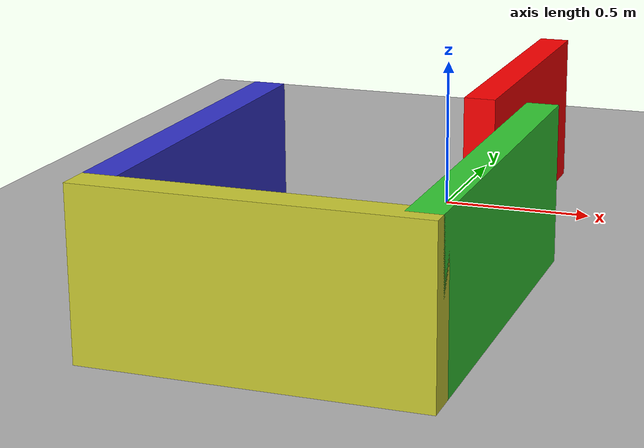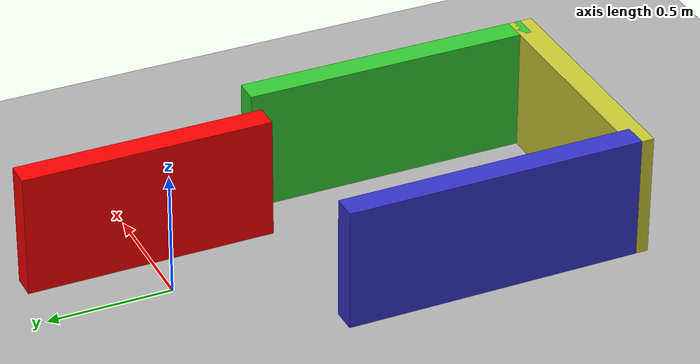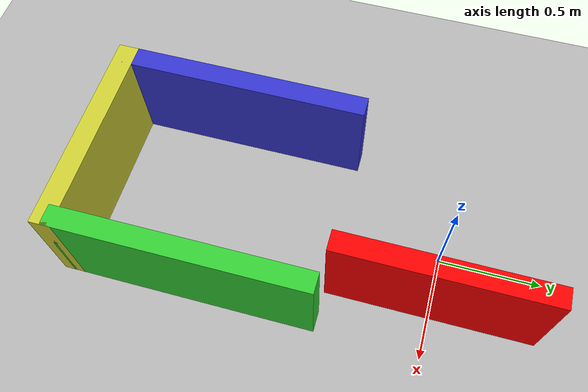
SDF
<?xml version="1.0" ?>
<sdf version="1.8">
  <world name="ParkingLot">
    <!-- Sensors rendszer plugin IGNITION GAZEBO-hoz -->
    <plugin filename="ignition-gazebo-physics-system" name="ignition::gazebo::systems::Physics"/>
    <plugin filename="ignition-gazebo-sensors-system" name="ignition::gazebo::systems::Sensors">
    </plugin>
    <scene>
      <ambient>0.8 0.8 0.8 1</ambient>
      <background>0.8 0.8 0.8 1</background>
    </scene>
    <include>
      <uri>model://sun</uri>
    </include>
    <light name="default_light" type="directional">
      <cast_shadows>true</cast_shadows>
      <pose>0 0 10 0 0 0</pose>
      <diffuse>1 1 1 1</diffuse>
      <specular>0.1 0.1 0.1 1</specular>
      <attenuation>
        <range>1000</range>
        <constant>0.9</constant>
      </attenuation>
    </light>

    <!-- Ground plane (plane geometry, inertia ok Gazebo Classic-hoz) -->
    <model name="ground_plane">
      <static>true</static>
      <link name="ground_plane_link">
        <inertial>
          <mass>1.0</mass>
          <inertia>
            <ixx>1.0</ixx>
            <iyy>1.0</iyy>
            <izz>1.0</izz>
            <ixy>0.0</ixy>
            <ixz>0.0</ixz>
            <iyz>0.0</iyz>
          </inertia>
        </inertial>
        <collision name="collision">
          <geometry>
            <plane>
              <normal>0 0 1</normal>
              <size>20 20</size>
            </plane>
          </geometry>
        </collision>
        <visual name="visual">
          <geometry>
            <plane>
              <normal>0 0 1</normal>
              <size>20 20</size>
            </plane>
          </geometry>
          <material>
            <ambient>0.7 0.7 0.7 1</ambient>
            <diffuse>0.7 0.7 0.7 1</diffuse>
          </material>
        </visual>
      </link>
    </model>

    <!-- Left wall -->
    <model name="wall_left">
      <static>true</static>
      <pose>-0.45 -1.1 0.25 0 0 0</pose>
      <link name="link">
        <inertial>
          <mass>1.0</mass>
          <inertia>
            <ixx>1.0</ixx>
            <iyy>1.0</iyy>
            <izz>1.0</izz>
            <ixy>0.0</ixy>
            <ixz>0.0</ixz>
            <iyz>0.0</iyz>
          </inertia>
        </inertial>
        <collision name="collision">
          <geometry>
            <box>
              <size>0.1 1.2 0.5</size>
            </box>
          </geometry>
        </collision>
        <visual name="visual">
          <geometry>
            <box>
              <size>0.1 1.2 0.5</size>
            </box>
          </geometry>
          <material>
            <ambient>0.2 0.2 0.8 1</ambient>
            <diffuse>0.2 0.2 0.8 1</diffuse>
          </material>
        </visual>
      </link>
    </model>

    <!-- Right wall -->
    <model name="wall_right">
      <static>true</static>
      <pose>0.45 -1.1 0.25 0 0 0</pose>
      <link name="link">
        <inertial>
          <mass>1.0</mass>
          <inertia>
            <ixx>1.0</ixx>
            <iyy>1.0</iyy>
            <izz>1.0</izz>
            <ixy>0.0</ixy>
            <ixz>0.0</ixz>
            <iyz>0.0</iyz>
          </inertia>
        </inertial>
        <collision name="collision">
          <geometry>
            <box>
              <size>0.1 1.2 0.5</size>
            </box>
          </geometry>
        </collision>
        <visual name="visual">
          <geometry>
            <box>
              <size>0.1 1.2 0.5</size>
            </box>
          </geometry>
          <material>
            <ambient>0.2 0.8 0.2 1</ambient>
            <diffuse>0.2 0.8 0.2 1</diffuse>
          </material>
        </visual>
      </link>
    </model>

    <!-- Back wall -->
    <model name="wall_back">
      <static>true</static>
      <pose>0 -1.7 0.25 0 0 0</pose>
      <link name="link">
        <inertial>
          <mass>1.0</mass>
          <inertia>
            <ixx>1.0</ixx>
            <iyy>1.0</iyy>
            <izz>1.0</izz>
            <ixy>0.0</ixy>
            <ixz>0.0</ixz>
            <iyz>0.0</iyz>
          </inertia>
        </inertial>
        <collision name="collision">
          <geometry>
            <box>
              <size>1.0 0.1 0.5</size>
            </box>
          </geometry>
        </collision>
        <visual name="visual">
          <geometry>
            <box>
              <size>1.0 0.1 0.5</size>
            </box>
          </geometry>
          <material>
            <ambient>0.8 0.8 0.2 1</ambient>
            <diffuse>0.8 0.8 0.2 1</diffuse>
          </material>
        </visual>
      </link>
    </model>

    <!-- Test wall in front of robot -->
    <model name="wall_front_test">
      <static>true</static>
      <pose>0.25 0 0.25 0 0 0</pose>
      <link name="link">
        <inertial>
          <mass>1.0</mass>
          <inertia>
            <ixx>0.01</ixx>
            <iyy>0.01</iyy>
            <izz>0.01</izz>
            <ixy>0.0</ixy>
            <ixz>0.0</ixz>
            <iyz>0.0</iyz>
          </inertia>
        </inertial>
        <collision name="collision">
          <geometry>
            <box>
              <size>0.1 1.0 0.5</size>
            </box>
          </geometry>
        </collision>
        <visual name="visual">
          <geometry>
            <box>
              <size>0.1 1.0 0.5</size>
            </box>
          </geometry>
          <material>
            <ambient>1 0 0 1</ambient>
            <diffuse>1 0 0 1</diffuse>
          </material>
        </visual>
      </link>
    </model>

  </world>
</sdf>
